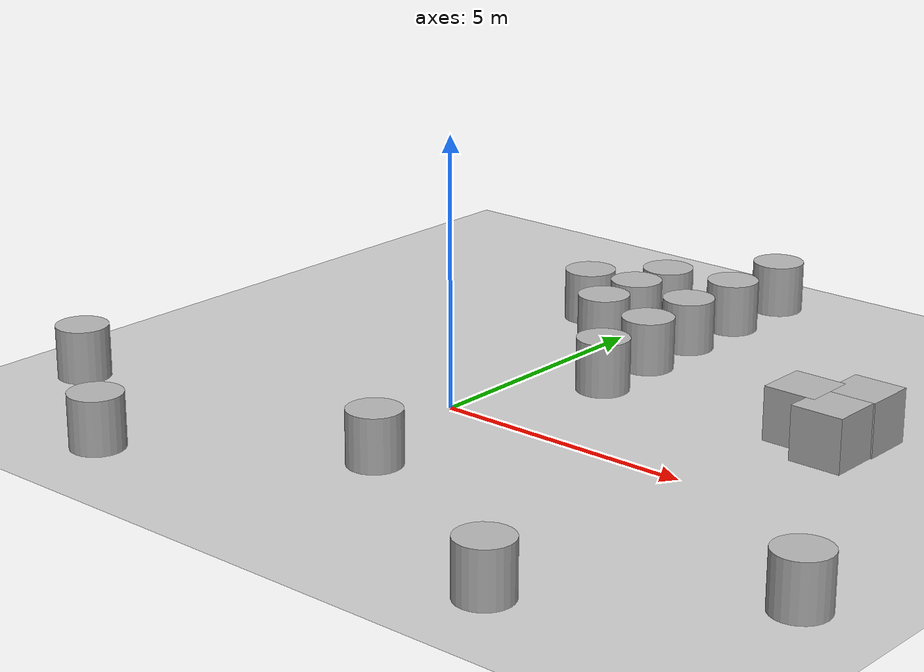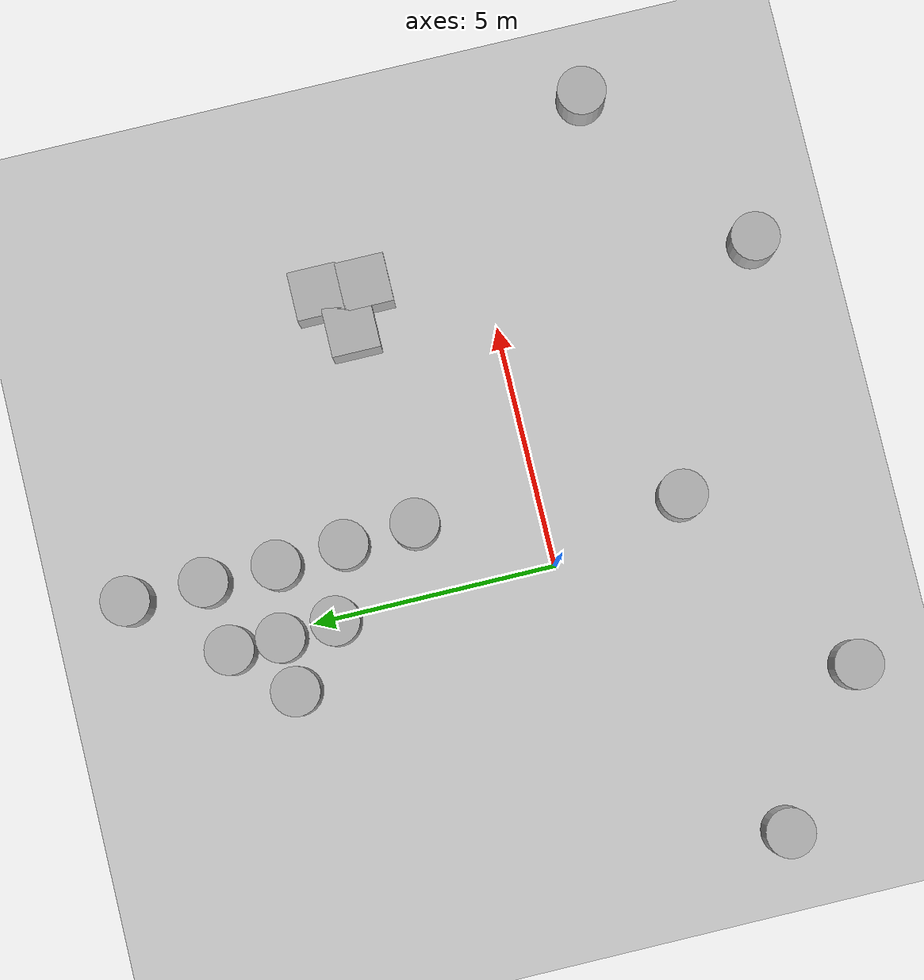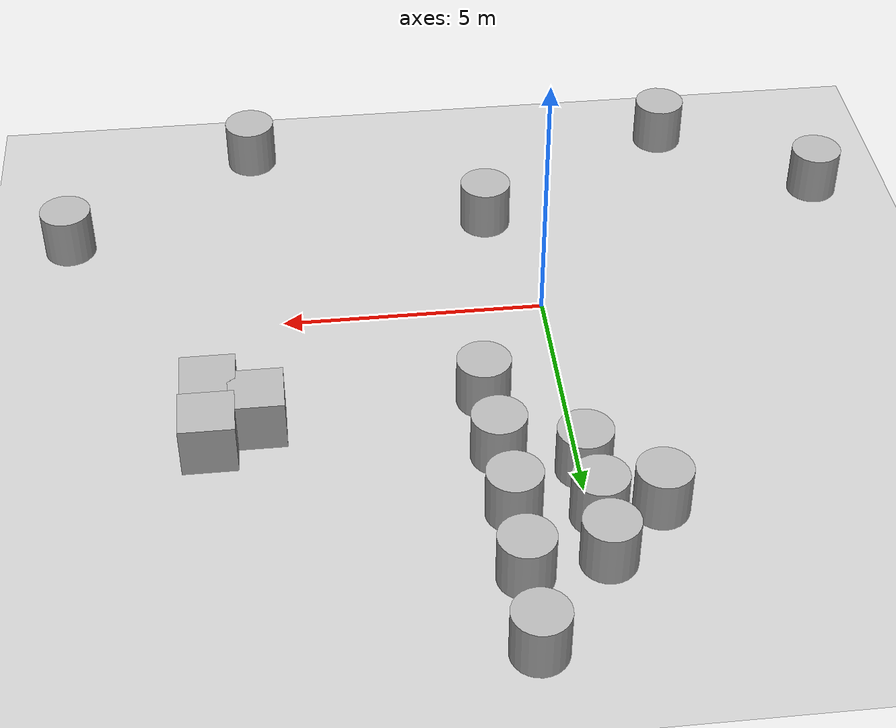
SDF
<sdf version='1.9'>
  <world name='empty'>
    <physics name='1ms' type='ignored'>
      <max_step_size>0.001</max_step_size>
      <real_time_factor>1</real_time_factor>
      <real_time_update_rate>1000</real_time_update_rate>
    </physics>
    <plugin name='gz::sim::systems::Physics' filename='ignition-gazebo-physics-system'/>
    <plugin name='gz::sim::systems::UserCommands' filename='ignition-gazebo-user-commands-system'/>
    <plugin name='gz::sim::systems::SceneBroadcaster' filename='ignition-gazebo-scene-broadcaster-system'/>
    <plugin name='gz::sim::systems::Contact' filename='ignition-gazebo-contact-system'/>
    <plugin filename="libignition-gazebo-sensors-system.so" name="ignition::gazebo::systems::Sensors">
      <render_engine>ogre2</render_engine>
    </plugin>
    <plugin filename="libignition-gazebo-imu-system.so" name="ignition::gazebo::systems::Imu"></plugin>
    <gravity>0 0 -9.8</gravity>
    <magnetic_field>6e-06 2.3e-05 -4.2e-05</magnetic_field>
    <atmosphere type='adiabatic'/>
    <scene>
      <ambient>0.4 0.4 0.4 1</ambient>
      <background>0.7 0.7 0.7 1</background>
      <shadows>true</shadows>
    </scene>
    <model name='ground_plane'>
      <static>true</static>
      <link name='link'>
        <collision name='collision'>
          <geometry>
            <plane>
              <normal>0 0 1</normal>
              <size>100 100</size>
            </plane>
          </geometry>
          <surface>
            <friction>
              <ode/>
            </friction>
            <bounce/>
            <contact/>
          </surface>
        </collision>
        <visual name='visual'>
          <geometry>
            <plane>
              <normal>0 0 1</normal>
              <size>100 100</size>
            </plane>
          </geometry>
          <material>
            <ambient>0.8 0.8 0.8 1</ambient>
            <diffuse>0.8 0.8 0.8 1</diffuse>
            <specular>0.8 0.8 0.8 1</specular>
          </material>
        </visual>
        <pose>0 0 0 0 -0 0</pose>
        <inertial>
          <pose>0 0 0 0 -0 0</pose>
          <mass>1</mass>
          <inertia>
            <ixx>1</ixx>
            <ixy>0</ixy>
            <ixz>0</ixz>
            <iyy>1</iyy>
            <iyz>0</iyz>
            <izz>1</izz>
          </inertia>
        </inertial>
        <enable_wind>false</enable_wind>
      </link>
      <pose>0 0 0 0 -0 0</pose>
      <self_collide>false</self_collide>
    </model>
    <model name='box'>
      <pose>6.42104 3.38243 0.5 0 -0 0</pose>
      <link name='box_link'>
        <inertial>
          <inertia>
            <ixx>0.16666</ixx>
            <ixy>0</ixy>
            <ixz>0</ixz>
            <iyy>0.16666</iyy>
            <iyz>0</iyz>
            <izz>0.16666</izz>
          </inertia>
          <mass>1</mass>
          <pose>0 0 0 0 -0 0</pose>
        </inertial>
        <collision name='box_collision'>
          <geometry>
            <box>
              <size>1 1 1</size>
            </box>
          </geometry>
          <surface>
            <friction>
              <ode/>
            </friction>
            <bounce/>
            <contact/>
          </surface>
        </collision>
        <visual name='box_visual'>
          <geometry>
            <box>
              <size>1 1 1</size>
            </box>
          </geometry>
          <material>
            <ambient>0.3 0.3 0.3 1</ambient>
            <diffuse>0.7 0.7 0.7 1</diffuse>
            <specular>1 1 1 1</specular>
          </material>
        </visual>
        <pose>0 0 0 0 -0 0</pose>
        <enable_wind>false</enable_wind>
      </link>
      <static>false</static>
      <self_collide>false</self_collide>
    </model>
    <model name='box_0'>
      <pose>6.38989 2.41022 0.5 0 -0 0</pose>
      <link name='box_link'>
        <inertial>
          <inertia>
            <ixx>0.16666</ixx>
            <ixy>0</ixy>
            <ixz>0</ixz>
            <iyy>0.16666</iyy>
            <iyz>0</iyz>
            <izz>0.16666</izz>
          </inertia>
          <mass>1</mass>
          <pose>0 0 0 0 -0 0</pose>
        </inertial>
        <collision name='box_collision'>
          <geometry>
            <box>
              <size>1 1 1</size>
            </box>
          </geometry>
          <surface>
            <friction>
              <ode/>
            </friction>
            <bounce/>
            <contact/>
          </surface>
        </collision>
        <visual name='box_visual'>
          <geometry>
            <box>
              <size>1 1 1</size>
            </box>
          </geometry>
          <material>
            <ambient>0.3 0.3 0.3 1</ambient>
            <diffuse>0.7 0.7 0.7 1</diffuse>
            <specular>1 1 1 1</specular>
          </material>
        </visual>
        <pose>0 0 0 0 -0 0</pose>
        <enable_wind>false</enable_wind>
      </link>
      <static>false</static>
      <self_collide>false</self_collide>
    </model>
    <model name='box_1'>
      <pose>5.54651 2.87399 0.5 0 -0 0</pose>
      <link name='box_link'>
        <inertial>
          <inertia>
            <ixx>0.16666</ixx>
            <ixy>0</ixy>
            <ixz>0</ixz>
            <iyy>0.16666</iyy>
            <iyz>0</iyz>
            <izz>0.16666</izz>
          </inertia>
          <mass>1</mass>
          <pose>0 0 0 0 -0 0</pose>
        </inertial>
        <collision name='box_collision'>
          <geometry>
            <box>
              <size>1 1 1</size>
            </box>
          </geometry>
          <surface>
            <friction>
              <ode/>
            </friction>
            <bounce/>
            <contact/>
          </surface>
        </collision>
        <visual name='box_visual'>
          <geometry>
            <box>
              <size>1 1 1</size>
            </box>
          </geometry>
          <material>
            <ambient>0.3 0.3 0.3 1</ambient>
            <diffuse>0.7 0.7 0.7 1</diffuse>
            <specular>1 1 1 1</specular>
          </material>
        </visual>
        <pose>0 0 0 0 -0 0</pose>
        <enable_wind>false</enable_wind>
      </link>
      <static>false</static>
      <self_collide>false</self_collide>
    </model>
    <model name='cylinder'>
      <pose>5.46246 -5.44202 0.5 0 -0 0</pose>
      <link name='cylinder_link'>
        <inertial>
          <inertia>
            <ixx>0.14580000000000001</ixx>
            <ixy>0</ixy>
            <ixz>0</ixz>
            <iyy>0.14580000000000001</iyy>
            <iyz>0</iyz>
            <izz>0.125</izz>
          </inertia>
          <mass>1</mass>
          <pose>0 0 0 0 -0 0</pose>
        </inertial>
        <collision name='cylinder_collision'>
          <geometry>
            <cylinder>
              <radius>0.5</radius>
              <length>1</length>
            </cylinder>
          </geometry>
          <surface>
            <friction>
              <ode/>
            </friction>
            <bounce/>
            <contact/>
          </surface>
        </collision>
        <visual name='cylinder_visual'>
          <geometry>
            <cylinder>
              <radius>0.5</radius>
              <length>1</length>
            </cylinder>
          </geometry>
          <material>
            <ambient>0.3 0.3 0.3 1</ambient>
            <diffuse>0.7 0.7 0.7 1</diffuse>
            <specular>1 1 1 1</specular>
          </material>
        </visual>
        <pose>0 0 0 0 -0 0</pose>
        <enable_wind>false</enable_wind>
      </link>
      <static>false</static>
      <self_collide>false</self_collide>
    </model>
    <model name='cylinder_0'>
      <pose>0.767267 -2.79055 0.5 0 -0 0</pose>
      <link name='cylinder_link'>
        <inertial>
          <inertia>
            <ixx>0.14580000000000001</ixx>
            <ixy>0</ixy>
            <ixz>0</ixz>
            <iyy>0.14580000000000001</iyy>
            <iyz>0</iyz>
            <izz>0.125</izz>
          </inertia>
          <mass>1</mass>
          <pose>0 0 0 0 -0 0</pose>
        </inertial>
        <collision name='cylinder_collision'>
          <geometry>
            <cylinder>
              <radius>0.5</radius>
              <length>1</length>
            </cylinder>
          </geometry>
          <surface>
            <friction>
              <ode/>
            </friction>
            <bounce/>
            <contact/>
          </surface>
        </collision>
        <visual name='cylinder_visual'>
          <geometry>
            <cylinder>
              <radius>0.5</radius>
              <length>1</length>
            </cylinder>
          </geometry>
          <material>
            <ambient>0.3 0.3 0.3 1</ambient>
            <diffuse>0.7 0.7 0.7 1</diffuse>
            <specular>1 1 1 1</specular>
          </material>
        </visual>
        <pose>0 0 0 0 -0 0</pose>
        <enable_wind>false</enable_wind>
      </link>
      <static>false</static>
      <self_collide>false</self_collide>
    </model>
    <model name='cylinder_1'>
      <pose>-3.31518 -5.35771 0.5 0 -0 0</pose>
      <link name='cylinder_link'>
        <inertial>
          <inertia>
            <ixx>0.14580000000000001</ixx>
            <ixy>0</ixy>
            <ixz>0</ixz>
            <iyy>0.14580000000000001</iyy>
            <iyz>0</iyz>
            <izz>0.125</izz>
          </inertia>
          <mass>1</mass>
          <pose>0 0 0 0 -0 0</pose>
        </inertial>
        <collision name='cylinder_collision'>
          <geometry>
            <cylinder>
              <radius>0.5</radius>
              <length>1</length>
            </cylinder>
          </geometry>
          <surface>
            <friction>
              <ode/>
            </friction>
            <bounce/>
            <contact/>
          </surface>
        </collision>
        <visual name='cylinder_visual'>
          <geometry>
            <cylinder>
              <radius>0.5</radius>
              <length>1</length>
            </cylinder>
          </geometry>
          <material>
            <ambient>0.3 0.3 0.3 1</ambient>
            <diffuse>0.7 0.7 0.7 1</diffuse>
            <specular>1 1 1 1</specular>
          </material>
        </visual>
        <pose>0 0 0 0 -0 0</pose>
        <enable_wind>false</enable_wind>
      </link>
      <static>false</static>
      <self_collide>false</self_collide>
    </model>
    <model name='cylinder_2'>
      <pose>-6.20265 -3.24392 0.5 0 -0 0</pose>
      <link name='cylinder_link'>
        <inertial>
          <inertia>
            <ixx>0.14580000000000001</ixx>
            <ixy>0</ixy>
            <ixz>0</ixz>
            <iyy>0.14580000000000001</iyy>
            <iyz>0</iyz>
            <izz>0.125</izz>
          </inertia>
          <mass>1</mass>
          <pose>0 0 0 0 -0 0</pose>
        </inertial>
        <collision name='cylinder_collision'>
          <geometry>
            <cylinder>
              <radius>0.5</radius>
              <length>1</length>
            </cylinder>
          </geometry>
          <surface>
            <friction>
              <ode/>
            </friction>
            <bounce/>
            <contact/>
          </surface>
        </collision>
        <visual name='cylinder_visual'>
          <geometry>
            <cylinder>
              <radius>0.5</radius>
              <length>1</length>
            </cylinder>
          </geometry>
          <material>
            <ambient>0.3 0.3 0.3 1</ambient>
            <diffuse>0.7 0.7 0.7 1</diffuse>
            <specular>1 1 1 1</specular>
          </material>
        </visual>
        <pose>0 0 0 0 -0 0</pose>
        <enable_wind>false</enable_wind>
      </link>
      <static>false</static>
      <self_collide>false</self_collide>
    </model>
    <model name='cylinder_3'>
      <pose>9.16639 -2.75122 0.5 0 -0 0</pose>
      <link name='cylinder_link'>
        <inertial>
          <inertia>
            <ixx>0.14580000000000001</ixx>
            <ixy>0</ixy>
            <ixz>0</ixz>
            <iyy>0.14580000000000001</iyy>
            <iyz>0</iyz>
            <izz>0.125</izz>
          </inertia>
          <mass>1</mass>
          <pose>0 0 0 0 -0 0</pose>
        </inertial>
        <collision name='cylinder_collision'>
          <geometry>
            <cylinder>
              <radius>0.5</radius>
              <length>1</length>
            </cylinder>
          </geometry>
          <surface>
            <friction>
              <ode/>
            </friction>
            <bounce/>
            <contact/>
          </surface>
        </collision>
        <visual name='cylinder_visual'>
          <geometry>
            <cylinder>
              <radius>0.5</radius>
              <length>1</length>
            </cylinder>
          </geometry>
          <material>
            <ambient>0.3 0.3 0.3 1</ambient>
            <diffuse>0.7 0.7 0.7 1</diffuse>
            <specular>1 1 1 1</specular>
          </material>
        </visual>
        <pose>0 0 0 0 -0 0</pose>
        <enable_wind>false</enable_wind>
      </link>
      <static>false</static>
      <self_collide>false</self_collide>
    </model>
    <model name='cylinder_4'>
      <pose>1.28195 6.87637 0.5 0 -0 0</pose>
      <link name='cylinder_link'>
        <inertial>
          <inertia>
            <ixx>0.14580000000000001</ixx>
            <ixy>0</ixy>
            <ixz>0</ixz>
            <iyy>0.14580000000000001</iyy>
            <iyz>0</iyz>
            <izz>0.125</izz>
          </inertia>
          <mass>1</mass>
          <pose>0 0 0 0 -0 0</pose>
        </inertial>
        <collision name='cylinder_collision'>
          <geometry>
            <cylinder>
              <radius>0.5</radius>
              <length>1</length>
            </cylinder>
          </geometry>
          <surface>
            <friction>
              <ode/>
            </friction>
            <bounce/>
            <contact/>
          </surface>
        </collision>
        <visual name='cylinder_visual'>
          <geometry>
            <cylinder>
              <radius>0.5</radius>
              <length>1</length>
            </cylinder>
          </geometry>
          <material>
            <ambient>0.3 0.3 0.3 1</ambient>
            <diffuse>0.7 0.7 0.7 1</diffuse>
            <specular>1 1 1 1</specular>
          </material>
        </visual>
        <pose>0 0 0 0 -0 0</pose>
        <enable_wind>false</enable_wind>
      </link>
      <static>false</static>
      <self_collide>false</self_collide>
    </model>
    <model name='cylinder_5'>
      <pose>1.28195 5.40207 0.5 0 -0 0</pose>
      <link name='cylinder_link'>
        <inertial>
          <inertia>
            <ixx>0.14580000000000001</ixx>
            <ixy>0</ixy>
            <ixz>0</ixz>
            <iyy>0.14580000000000001</iyy>
            <iyz>0</iyz>
            <izz>0.125</izz>
          </inertia>
          <mass>1</mass>
          <pose>0 0 0 0 -0 0</pose>
        </inertial>
        <collision name='cylinder_collision'>
          <geometry>
            <cylinder>
              <radius>0.5</radius>
              <length>1</length>
            </cylinder>
          </geometry>
          <surface>
            <friction>
              <ode/>
            </friction>
            <bounce/>
            <contact/>
          </surface>
        </collision>
        <visual name='cylinder_visual'>
          <geometry>
            <cylinder>
              <radius>0.5</radius>
              <length>1</length>
            </cylinder>
          </geometry>
          <material>
            <ambient>0.3 0.3 0.3 1</ambient>
            <diffuse>0.7 0.7 0.7 1</diffuse>
            <specular>1 1 1 1</specular>
          </material>
        </visual>
        <pose>0 0 0 0 -0 0</pose>
        <enable_wind>false</enable_wind>
      </link>
      <static>false</static>
      <self_collide>false</self_collide>
    </model>
    <model name='cylinder_6'>
      <pose>1.36561 4.00444 0.5 0 -0 0</pose>
      <link name='cylinder_link'>
        <inertial>
          <inertia>
            <ixx>0.14580000000000001</ixx>
            <ixy>0</ixy>
            <ixz>0</ixz>
            <iyy>0.14580000000000001</iyy>
            <iyz>0</iyz>
            <izz>0.125</izz>
          </inertia>
          <mass>1</mass>
          <pose>0 0 0 0 -0 0</pose>
        </inertial>
        <collision name='cylinder_collision'>
          <geometry>
            <cylinder>
              <radius>0.5</radius>
              <length>1</length>
            </cylinder>
          </geometry>
          <surface>
            <friction>
              <ode/>
            </friction>
            <bounce/>
            <contact/>
          </surface>
        </collision>
        <visual name='cylinder_visual'>
          <geometry>
            <cylinder>
              <radius>0.5</radius>
              <length>1</length>
            </cylinder>
          </geometry>
          <material>
            <ambient>0.3 0.3 0.3 1</ambient>
            <diffuse>0.7 0.7 0.7 1</diffuse>
            <specular>1 1 1 1</specular>
          </material>
        </visual>
        <pose>0 0 0 0 -0 0</pose>
        <enable_wind>false</enable_wind>
      </link>
      <static>false</static>
      <self_collide>false</self_collide>
    </model>
    <model name='cylinder_7'>
      <pose>1.45035 2.53653 0.5 0 -0 0</pose>
      <link name='cylinder_link'>
        <inertial>
          <inertia>
            <ixx>0.14580000000000001</ixx>
            <ixy>0</ixy>
            <ixz>0</ixz>
            <iyy>0.14580000000000001</iyy>
            <iyz>0</iyz>
            <izz>0.125</izz>
          </inertia>
          <mass>1</mass>
          <pose>0 0 0 0 -0 0</pose>
        </inertial>
        <collision name='cylinder_collision'>
          <geometry>
            <cylinder>
              <radius>0.5</radius>
              <length>1</length>
            </cylinder>
          </geometry>
          <surface>
            <friction>
              <ode/>
            </friction>
            <bounce/>
            <contact/>
          </surface>
        </collision>
        <visual name='cylinder_visual'>
          <geometry>
            <cylinder>
              <radius>0.5</radius>
              <length>1</length>
            </cylinder>
          </geometry>
          <material>
            <ambient>0.3 0.3 0.3 1</ambient>
            <diffuse>0.7 0.7 0.7 1</diffuse>
            <specular>1 1 1 1</specular>
          </material>
        </visual>
        <pose>0 0 0 0 -0 0</pose>
        <enable_wind>false</enable_wind>
      </link>
      <static>false</static>
      <self_collide>false</self_collide>
    </model>
    <model name='cylinder_8'>
      <pose>1.28195 8.46871 0.5 0 -0 0</pose>
      <link name='cylinder_link'>
        <inertial>
          <inertia>
            <ixx>0.14580000000000001</ixx>
            <ixy>0</ixy>
            <ixz>0</ixz>
            <iyy>0.14580000000000001</iyy>
            <iyz>0</iyz>
            <izz>0.125</izz>
          </inertia>
          <mass>1</mass>
          <pose>0 0 0 0 -0 0</pose>
        </inertial>
        <collision name='cylinder_collision'>
          <geometry>
            <cylinder>
              <radius>0.5</radius>
              <length>1</length>
            </cylinder>
          </geometry>
          <surface>
            <friction>
              <ode/>
            </friction>
            <bounce/>
            <contact/>
          </surface>
        </collision>
        <visual name='cylinder_visual'>
          <geometry>
            <cylinder>
              <radius>0.5</radius>
              <length>1</length>
            </cylinder>
          </geometry>
          <material>
            <ambient>0.3 0.3 0.3 1</ambient>
            <diffuse>0.7 0.7 0.7 1</diffuse>
            <specular>1 1 1 1</specular>
          </material>
        </visual>
        <pose>0 0 0 0 -0 0</pose>
        <enable_wind>false</enable_wind>
      </link>
      <static>false</static>
      <self_collide>false</self_collide>
    </model>
    <model name='cylinder_9'>
      <pose>-0.143351 6.68103 0.5 0 -0 0</pose>
      <link name='cylinder_link'>
        <inertial>
          <inertia>
            <ixx>0.14580000000000001</ixx>
            <ixy>0</ixy>
            <ixz>0</ixz>
            <iyy>0.14580000000000001</iyy>
            <iyz>0</iyz>
            <izz>0.125</izz>
          </inertia>
          <mass>1</mass>
          <pose>0 0 0 0 -0 0</pose>
        </inertial>
        <collision name='cylinder_collision'>
          <geometry>
            <cylinder>
              <radius>0.5</radius>
              <length>1</length>
            </cylinder>
          </geometry>
          <surface>
            <friction>
              <ode/>
            </friction>
            <bounce/>
            <contact/>
          </surface>
        </collision>
        <visual name='cylinder_visual'>
          <geometry>
            <cylinder>
              <radius>0.5</radius>
              <length>1</length>
            </cylinder>
          </geometry>
          <material>
            <ambient>0.3 0.3 0.3 1</ambient>
            <diffuse>0.7 0.7 0.7 1</diffuse>
            <specular>1 1 1 1</specular>
          </material>
        </visual>
        <pose>0 0 0 0 -0 0</pose>
        <enable_wind>false</enable_wind>
      </link>
      <static>false</static>
      <self_collide>false</self_collide>
    </model>
    <model name='cylinder_10'>
      <pose>-0.143352 5.64234 0.5 0 -0 0</pose>
      <link name='cylinder_link'>
        <inertial>
          <inertia>
            <ixx>0.14580000000000001</ixx>
            <ixy>0</ixy>
            <ixz>0</ixz>
            <iyy>0.14580000000000001</iyy>
            <iyz>0</iyz>
            <izz>0.125</izz>
          </inertia>
          <mass>1</mass>
          <pose>0 0 0 0 -0 0</pose>
        </inertial>
        <collision name='cylinder_collision'>
          <geometry>
            <cylinder>
              <radius>0.5</radius>
              <length>1</length>
            </cylinder>
          </geometry>
          <surface>
            <friction>
              <ode/>
            </friction>
            <bounce/>
            <contact/>
          </surface>
        </collision>
        <visual name='cylinder_visual'>
          <geometry>
            <cylinder>
              <radius>0.5</radius>
              <length>1</length>
            </cylinder>
          </geometry>
          <material>
            <ambient>0.3 0.3 0.3 1</ambient>
            <diffuse>0.7 0.7 0.7 1</diffuse>
            <specular>1 1 1 1</specular>
          </material>
        </visual>
        <pose>0 0 0 0 -0 0</pose>
        <enable_wind>false</enable_wind>
      </link>
      <static>false</static>
      <self_collide>false</self_collide>
    </model>
    <model name='cylinder_11'>
      <pose>-0.069807 4.51339 0.5 0 -0 0</pose>
      <link name='cylinder_link'>
        <inertial>
          <inertia>
            <ixx>0.14580000000000001</ixx>
            <ixy>0</ixy>
            <ixz>0</ixz>
            <iyy>0.14580000000000001</iyy>
            <iyz>0</iyz>
            <izz>0.125</izz>
          </inertia>
          <mass>1</mass>
          <pose>0 0 0 0 -0 0</pose>
        </inertial>
        <collision name='cylinder_collision'>
          <geometry>
            <cylinder>
              <radius>0.5</radius>
              <length>1</length>
            </cylinder>
          </geometry>
          <surface>
            <friction>
              <ode/>
            </friction>
            <bounce/>
            <contact/>
          </surface>
        </collision>
        <visual name='cylinder_visual'>
          <geometry>
            <cylinder>
              <radius>0.5</radius>
              <length>1</length>
            </cylinder>
          </geometry>
          <material>
            <ambient>0.3 0.3 0.3 1</ambient>
            <diffuse>0.7 0.7 0.7 1</diffuse>
            <specular>1 1 1 1</specular>
          </material>
        </visual>
        <pose>0 0 0 0 -0 0</pose>
        <enable_wind>false</enable_wind>
      </link>
      <static>false</static>
      <self_collide>false</self_collide>
    </model>
    <model name='cylinder_12'>
      <pose>-1.24243 5.58977 0.5 0 -0 0</pose>
      <link name='cylinder_link'>
        <inertial>
          <inertia>
            <ixx>0.14580000000000001</ixx>
            <ixy>0</ixy>
            <ixz>0</ixz>
            <iyy>0.14580000000000001</iyy>
            <iyz>0</iyz>
            <izz>0.125</izz>
          </inertia>
          <mass>1</mass>
          <pose>0 0 0 0 -0 0</pose>
        </inertial>
        <collision name='cylinder_collision'>
          <geometry>
            <cylinder>
              <radius>0.5</radius>
              <length>1</length>
            </cylinder>
          </geometry>
          <surface>
            <friction>
              <ode/>
            </friction>
            <bounce/>
            <contact/>
          </surface>
        </collision>
        <visual name='cylinder_visual'>
          <geometry>
            <cylinder>
              <radius>0.5</radius>
              <length>1</length>
            </cylinder>
          </geometry>
          <material>
            <ambient>0.3 0.3 0.3 1</ambient>
            <diffuse>0.7 0.7 0.7 1</diffuse>
            <specular>1 1 1 1</specular>
          </material>
        </visual>
        <pose>0 0 0 0 -0 0</pose>
        <enable_wind>false</enable_wind>
      </link>
      <static>false</static>
      <self_collide>false</self_collide>
    </model>
    <light name='sun' type='directional'>
      <pose>0 0 10 0 -0 0</pose>
      <cast_shadows>true</cast_shadows>
      <intensity>1</intensity>
      <direction>-0.5 0.1 -0.9</direction>
      <diffuse>0.8 0.8 0.8 1</diffuse>
      <specular>0.2 0.2 0.2 1</specular>
      <attenuation>
        <range>1000</range>
        <linear>0.01</linear>
        <constant>0.90000000000000002</constant>
        <quadratic>0.001</quadratic>
      </attenuation>
      <spot>
        <inner_angle>0</inner_angle>
        <outer_angle>0</outer_angle>
        <falloff>0</falloff>
      </spot>
    </light>
  </world>
</sdf>
